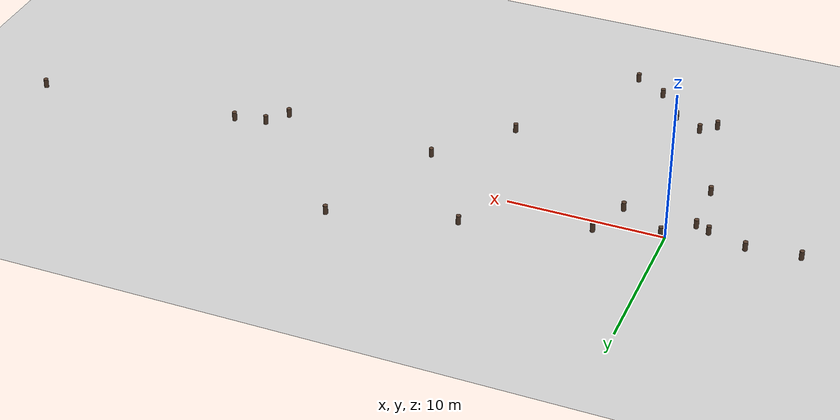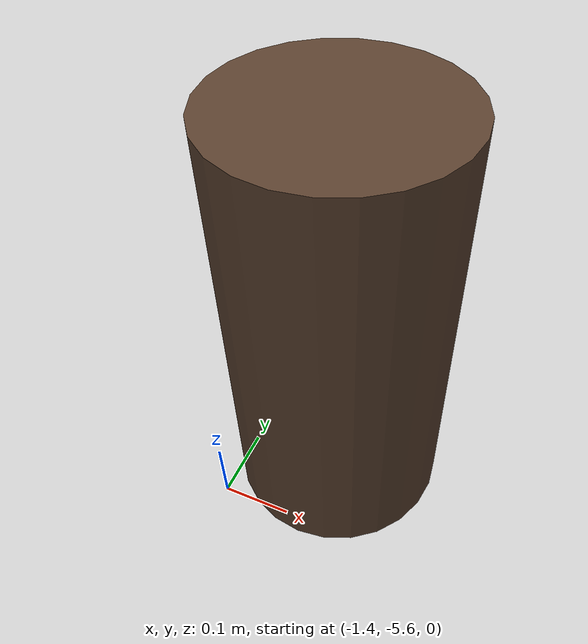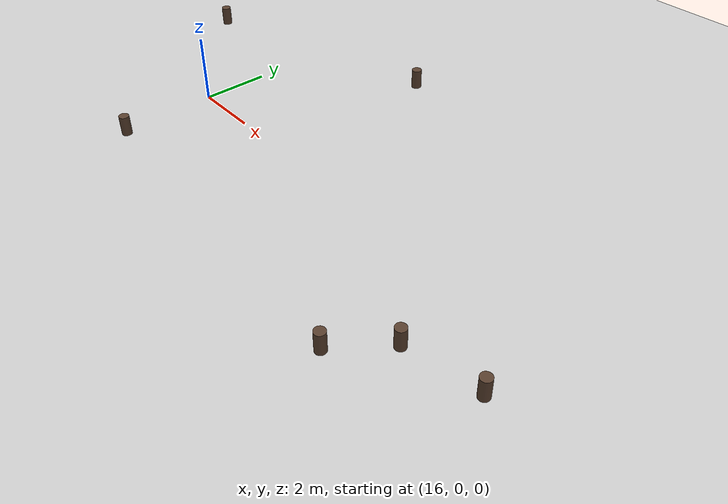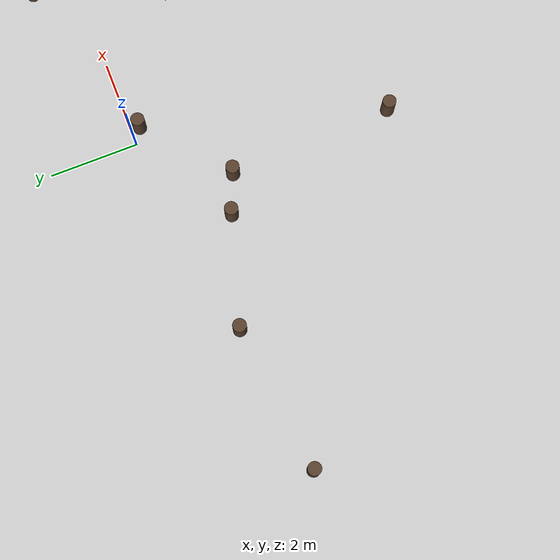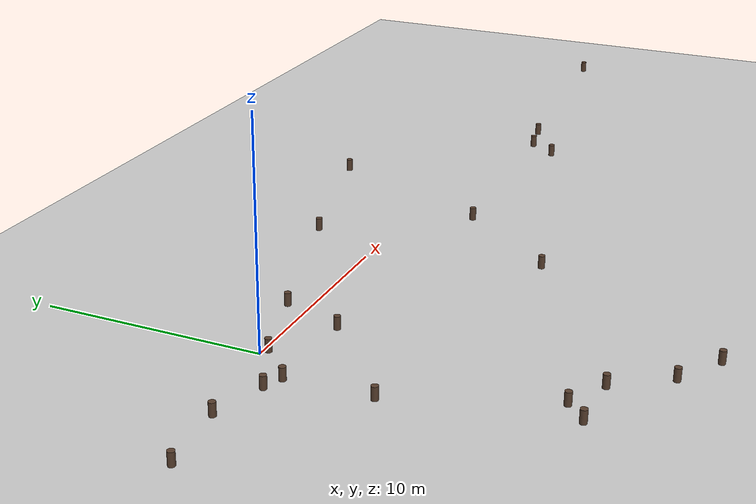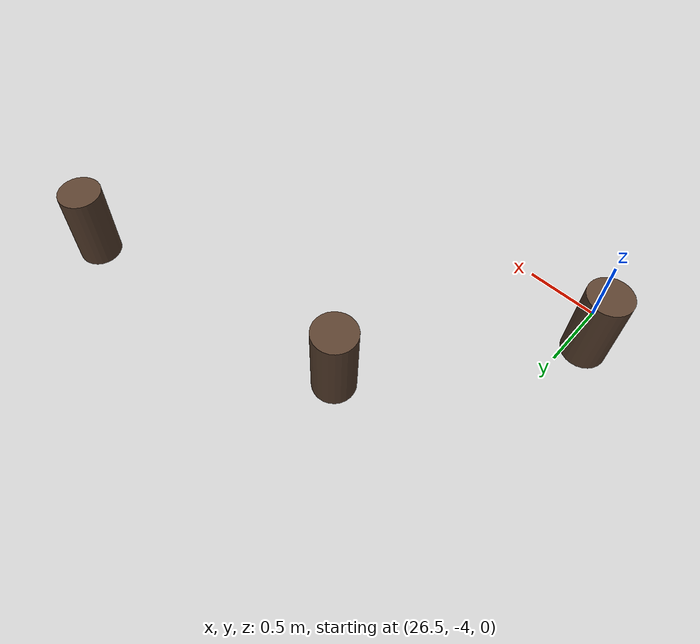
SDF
<?xml version="1.0"?>
<sdf version="1.6">
  <world name="orchard_world">
    <include>
      <uri>model://sun</uri>
    </include>

    <include>
      <uri>model://ground_plane</uri>
    </include>

    <!-- Trees: 21 includes of model://tree_trunk -->
    <include>
      <uri>model://tree_trunk</uri>
      <name>tree_0000</name>
      <pose>6.746206 -16.523907 0 0 0 0</pose>
    </include>
    <include>
      <uri>model://tree_trunk</uri>
      <name>tree_0001</name>
      <pose>4.693184 -15.242548 0 0 0 0</pose>
    </include>
    <include>
      <uri>model://tree_trunk</uri>
      <name>tree_0002</name>
      <pose>3.098242 -12.944296 0 0 0 0</pose>
    </include>
    <include>
      <uri>model://tree_trunk</uri>
      <name>tree_0003</name>
      <pose>0.345603 -12.851406 0 0 0 0</pose>
    </include>
    <include>
      <uri>model://tree_trunk</uri>
      <name>tree_0004</name>
      <pose>1.293279 -12.008918 0 0 0 0</pose>
    </include>
    <include>
      <uri>model://tree_trunk</uri>
      <name>tree_0005</name>
      <pose>12.210434 -7.580057 0 0 0 0</pose>
    </include>
    <include>
      <uri>model://tree_trunk</uri>
      <name>tree_0006</name>
      <pose>-1.271465 -5.469592 0 0 0 0</pose>
    </include>
    <include>
      <uri>model://tree_trunk</uri>
      <name>tree_0007</name>
      <pose>26.400137 -3.694981 0 0 0 0</pose>
    </include>
    <include>
      <uri>model://tree_trunk</uri>
      <name>tree_0008</name>
      <pose>16.158577 -2.883235 0 0 0 0</pose>
    </include>
    <include>
      <uri>model://tree_trunk</uri>
      <name>tree_0009</name>
      <pose>27.432972 -2.351308 0 0 0 0</pose>
    </include>
    <include>
      <uri>model://tree_trunk</uri>
      <name>tree_0010</name>
      <pose>29.480732 -1.967144 0 0 0 0</pose>
    </include>
    <include>
      <uri>model://tree_trunk</uri>
      <name>tree_0011</name>
      <pose>3.166780 -1.825125 0 0 0 0</pose>
    </include>
    <include>
      <uri>model://tree_trunk</uri>
      <name>tree_0012</name>
      <pose>-1.416728 -1.742284 0 0 0 0</pose>
    </include>
    <include>
      <uri>model://tree_trunk</uri>
      <name>tree_0013</name>
      <pose>-2.276968 -1.385650 0 0 0 0</pose>
    </include>
    <include>
      <uri>model://tree_trunk</uri>
      <name>tree_0014</name>
      <pose>-8.015732 -1.010002 0 0 0 0</pose>
    </include>
    <include>
      <uri>model://tree_trunk</uri>
      <name>tree_0015</name>
      <pose>42.807808 -0.868236 0 0 0 0</pose>
    </include>
    <include>
      <uri>model://tree_trunk</uri>
      <name>tree_0016</name>
      <pose>-4.708327 -0.643307 0 0 0 0</pose>
    </include>
    <include>
      <uri>model://tree_trunk</uri>
      <name>tree_0017</name>
      <pose>0.339437 -0.198569 0 0 0 0</pose>
    </include>
    <include>
      <uri>model://tree_trunk</uri>
      <name>tree_0018</name>
      <pose>4.226435 0.979906 0 0 0 0</pose>
    </include>
    <include>
      <uri>model://tree_trunk</uri>
      <name>tree_0019</name>
      <pose>11.927492 3.323712 0 0 0 0</pose>
    </include>
    <include>
      <uri>model://tree_trunk</uri>
      <name>tree_0020</name>
      <pose>19.757130 5.388035 0 0 0 0</pose>
    </include>
  </world>
</sdf>

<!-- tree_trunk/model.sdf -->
<sdf version="1.6">
  <model name="tree_trunk">
    <static>true</static>
    <link name="link">
      <collision name="trunk_collision">
        <pose>0 0 0.30 0 0 0</pose>
        <geometry>
          <cylinder>
            <radius>0.15</radius>
            <length>0.60</length>
          </cylinder>
        </geometry>
      </collision>
      <visual name="trunk_visual">
        <pose>0 0 0.30 0 0 0</pose>
        <geometry>
          <cylinder>
            <radius>0.15</radius>
            <length>0.60</length>
          </cylinder>
        </geometry>
        <material>
          <ambient>0.25 0.18 0.12 1</ambient>
          <diffuse>0.35 0.25 0.18 1</diffuse>
        </material>
      </visual>
    </link>
  </model>
</sdf>
